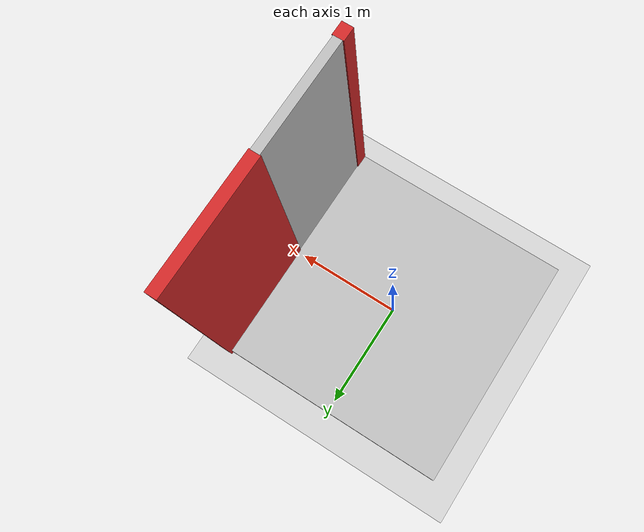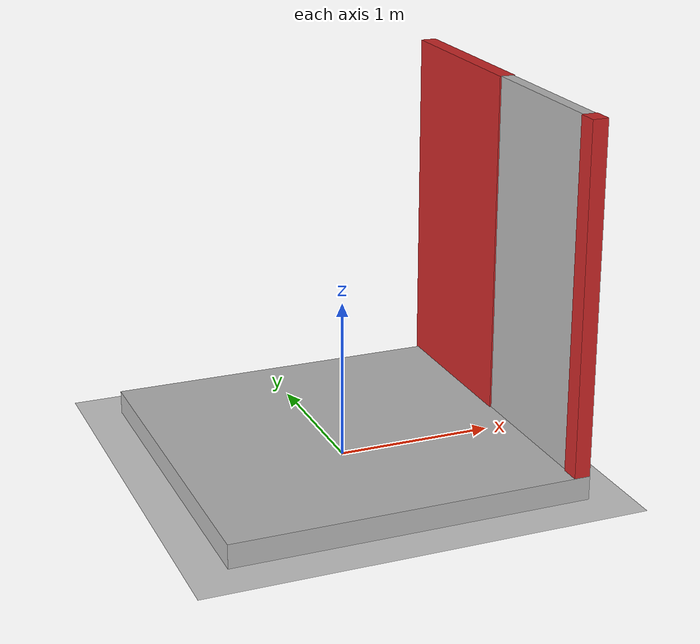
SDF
<sdf version="1.5">
 <world name="default">
  <model name="ground_plane">
   <static>1</static>
   <link name="link">
    <collision name="collision">
     <geometry><plane><normal>0 0 1</normal><size>1000 1000</size></plane></geometry>
     <surface><friction><ode><mu>100</mu><mu2>50</mu2></ode></friction></surface>
    </collision>
    <visual name="visual">
     <cast_shadows>0</cast_shadows>
     <geometry><plane><normal>0 0 1</normal><size>1000 1000</size></plane></geometry>
     <material>
      <script><uri>file://media/materials/scripts/gazebo.material</uri><name>Gazebo/Grey</name></script>
     </material>
    </visual>
   </link>
  </model>
  <model name="elevator">
   <pose>0 0 0.075 0 0 0</pose>
   <link name="link">
    <inertial><mass>800</mass></inertial>
    <collision name="floor_collision"><geometry><box><size>2.25 2.25 0.15</size></box></geometry></collision>
    <visual name="floor_visual"><geometry><box><size>2.25 2.25 0.15</size></box></geometry></visual>
    <collision name="wall1_collision">
     <pose>1.0745 0.5725 1.125 0 0 0</pose>
     <geometry><box><size>0.1 1.15 2.25</size></box></geometry>
    </collision>
    <visual name="wall1_visual">
     <pose>1.0745 0.5725 1.125 0 0 0</pose>
     <geometry><box><size>0.1 1.15 2.25</size></box></geometry>
     <material><script><name>Gazebo/Red</name></script></material>
    </visual>
    <collision name="wall2_collision">
     <pose>1.0745 -1.0625 1.125 0 0 0</pose>
     <geometry><box><size>0.1 0.125 2.25</size></box></geometry>
    </collision>
    <visual name="wall2_visual">
     <pose>1.0745 -1.0625 1.125 0 0 0</pose>
     <geometry><box><size>0.1 0.125 2.25</size></box></geometry>
     <material><script><name>Gazebo/Red</name></script></material>
    </visual>
   </link>
   <link name="door">
    <pose>1.0745 -0.5 1.125 0 0 0</pose>
    <collision name="collision"><geometry><box><size>0.08 1.0 2.25</size></box></geometry></collision>
    <visual name="visual"><geometry><box><size>0.08 1.0 2.25</size></box></geometry></visual>
   </link>
   <joint name="door" type="prismatic">
    <parent>link</parent>
    <child>door</child>
    <axis>
     <xyz>0 1 0</xyz>
     <limit><lower>0</lower><upper>1</upper><effort>10</effort></limit>
     <dynamics><damping>2</damping></dynamics>
    </axis>
   </joint>
   <joint name="lift" type="prismatic">
    <parent>world</parent>
    <child>link</child>
    <axis>
     <xyz>0 0 1</xyz>
     <limit><lower>0</lower><upper>10</upper><effort>100000</effort></limit>
     <dynamics><damping>50</damping></dynamics>
    </axis>
    <physics><ode><implicit_spring_damper>1</implicit_spring_damper></ode></physics>
   </joint>
   <plugin filename="libgazebo_ros_elevator.so" name="elevator_plugin">
    <lift_joint>elevator::lift</lift_joint>
    <door_joint>elevator::door</door_joint>
    <floor_height>3.075</floor_height>
    <door_wait_time>5</door_wait_time>
    <topic>elevator</topic>
   </plugin>
  </model>
 </world>
</sdf>
